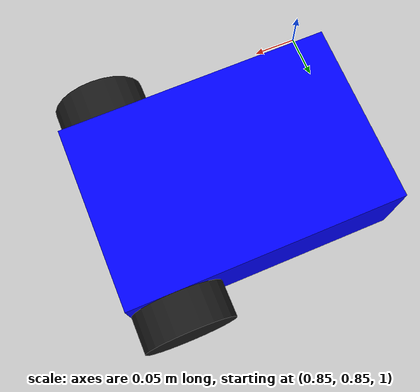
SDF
<?xml version="1.0" ?>
<sdf version="1.10">
    <world name="meu_mundo">
        <physics name="1ms" type="ignored">
            <max_step_size>0.001</max_step_size>
            <real_time_factor>1.0</real_time_factor>
        </physics>
        <plugin
            filename="gz-sim-physics-system"
            name="gz::sim::systems::Physics">
        </plugin>
        <plugin
            filename="gz-sim-user-commands-system"
            name="gz::sim::systems::UserCommands">
        </plugin>
        <plugin
            filename="gz-sim-scene-broadcaster-system"
            name="gz::sim::systems::SceneBroadcaster">
        </plugin>

        <plugin name="gz::sim::systems::Sensors" filename="gz-sim-sensors-system">
          <render_engine>ogre2</render_engine>
        </plugin>

        <light type="directional" name="sun">
            <cast_shadows>true</cast_shadows>
            <pose>0 0 10 0 0 0</pose>
            <diffuse>0.8 0.8 0.8 1</diffuse>
            <specular>0.2 0.2 0.2 1</specular>
            <attenuation>
                <range>1000</range>
                <constant>0.9</constant>
                <linear>0.01</linear>
                <quadratic>0.001</quadratic>
            </attenuation>
            <direction>-0.5 0.1 -0.9</direction>
        </light>

        <model name="ground_plane">
            <static>true</static>
            <link name="link">
                <collision name="collision">
                <geometry>
                    <plane>
                    <normal>0 0 1</normal>
                    </plane>
                </geometry>
                </collision>
                <visual name="visual">
                <geometry>
                    <plane>
                    <normal>0 0 1</normal>
                    <size>100 100</size>
                    </plane>
                </geometry>
                <material>
                    <ambient>0.8 0.8 0.8 1</ambient>
                    <diffuse>0.8 0.8 0.8 1</diffuse>
                    <specular>0.8 0.8 0.8 1</specular>
                </material>
                </visual>
            </link>
        </model>

        <include>
            <uri>meu_robo.sdf</uri>
            <pose>1 1 1 0 0 0</pose>
        </include>

    </world>
</sdf>

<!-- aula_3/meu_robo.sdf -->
<sdf version="1.8">
  <model name='meu_primeiro_robo' canonical_link='base_link'>
    <pose>0 0 0.1 0 0 0</pose>

    <link name='base_link'>
      <pose relative_to='__model__'>0 0 0.05 0 0 0</pose>
      <inertial>
        <mass>1.0</mass>
        <inertia><ixx>0.0108</ixx><iyy>0.0216</iyy><izz>0.0275</izz></inertia>
      </inertial>
      <visual name='visual'><geometry><box><size>0.3 0.2 0.1</size></box></geometry><material><ambient>0.0 0.0 1.0 1</ambient><diffuse>0.0 0.0 1.0 1</diffuse></material></visual>
      <collision name='collision'><geometry><box><size>0.3 0.2 0.1</size></box></geometry></collision>

      <sensor name='camera_sensor' type='camera'>
        <pose relative_to='base_link'>0.15 0 0.05 0 0 0</pose>
        <camera>
          <horizontal_fov>1.047</horizontal_fov>
          <image><width>640</width><height>480</height></image>
        </camera>
        <always_on>1</always_on>
        <update_rate>30</update_rate>
        <visualize>true</visualize>
        <topic>camera</topic>
      </sensor>

      <sensor name='lidar_sensor' type='gpu_lidar'>
      <pose relative_to='base_link'>0.0 0 0.06 0 0 0</pose>
      <always_on>1</always_on>
      <update_rate>10</update_rate>
      <visualize>true</visualize>
      <topic>/scan</topic>
      <lidar>
        <scan>
          <horizontal>
            <samples>720</samples>
            <resolution>1</resolution>
            <min_angle>-3.14159</min_angle>
            <max_angle>3.14159</max_angle>
          </horizontal>
          <vertical>
            <samples>1</samples>
            <resolution>1</resolution>
            <min_angle>0</min_angle>
            <max_angle>0</max_angle>
          </vertical>
        </scan>
        <range>
          <min>0.1</min>
          <max>12.0</max>
        </range>
      </lidar>
    </sensor>

    </link>

    <link name='left_wheel_link'><pose relative_to="base_link">0.1 0.12 0 -1.5707 0 0</pose><inertial><mass>0.1</mass><inertia><ixx>0.00015</ixx><iyy>0.00015</iyy><izz>0.00012</izz></inertia></inertial><visual name='visual'><geometry><cylinder><radius>0.05</radius><length>0.04</length></cylinder></geometry><material><ambient>0.1 0.1 0.1 1</ambient><diffuse>0.1 0.1 0.1 1</diffuse></material></visual><collision name='collision'><geometry><cylinder><radius>0.05</radius><length>0.04</length></cylinder></geometry></collision></link>
    <link name='right_wheel_link'><pose relative_to="base_link">0.1 -0.12 0 -1.5707 0 0</pose><inertial><mass>0.1</mass><inertia><ixx>0.00015</ixx><iyy>0.00015</iyy><izz>0.00012</izz></inertia></inertial><visual name='visual'><geometry><cylinder><radius>0.05</radius><length>0.04</length></cylinder></geometry><material><ambient>0.1 0.1 0.1 1</ambient><diffuse>0.1 0.1 0.1 1</diffuse></material></visual><collision name='collision'><geometry><cylinder><radius>0.05</radius><length>0.04</length></cylinder></geometry></collision></link>
    <link name='caster_link'><pose relative_to="base_link">-0.1 0 -0.03 0 0 0</pose><inertial><mass>0.05</mass><inertia><ixx>0.00002</ixx><iyy>0.00002</iyy><izz>0.00002</izz></inertia></inertial><visual name='visual'><geometry><sphere><radius>0.02</radius></sphere></geometry><material><ambient>0.1 0.1 0.1 1</ambient><diffuse>0.1 0.1 0.1 1</diffuse></material></visual><collision name='collision'><geometry><sphere><radius>0.02</radius></sphere></geometry></collision></link>

    <joint name='left_wheel_joint' type='revolute'><parent>base_link</parent><child>left_wheel_link</child><axis><xyz expressed_in='__model__'>0 1 0</xyz></axis></joint>
    <joint name='right_wheel_joint' type='revolute'><parent>base_link</parent><child>right_wheel_link</child><axis><xyz expressed_in='__model__'>0 1 0</xyz></axis></joint>
    <joint name='caster_joint' type='ball'><parent>base_link</parent><child>caster_link</child></joint>

    <plugin filename="gz-sim-diff-drive-system" name="gz::sim::systems::DiffDrive"><left_joint>left_wheel_joint</left_joint><right_joint>right_wheel_joint</right_joint><wheel_separation>0.24</wheel_separation><wheel_radius>0.05</wheel_radius><topic>/cmd_vel</topic><odom_topic>/odom</odom_topic></plugin>
  </model>
</sdf>
